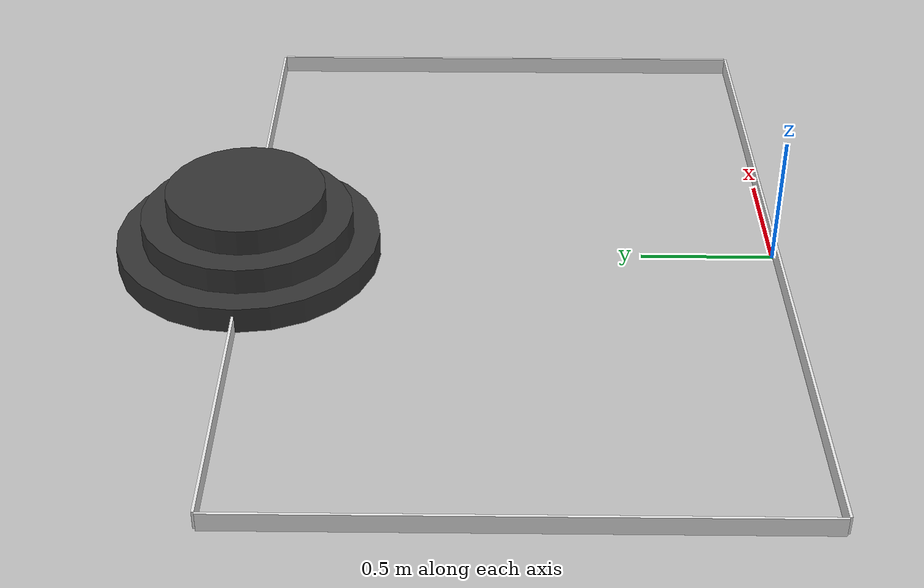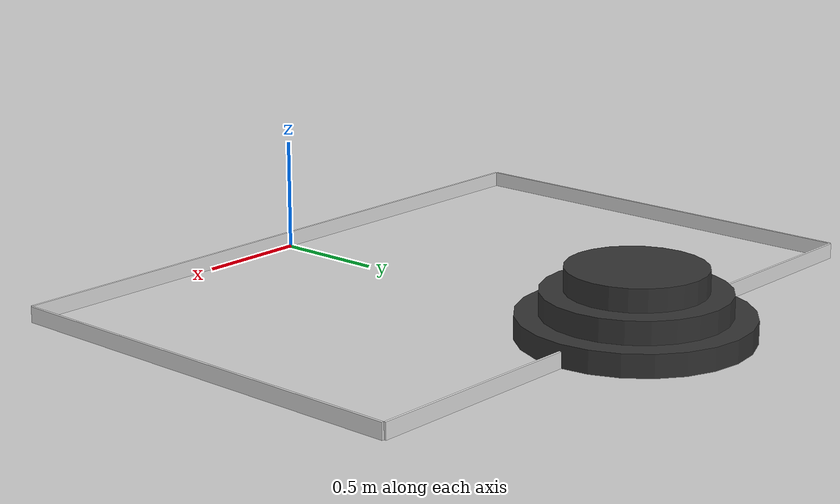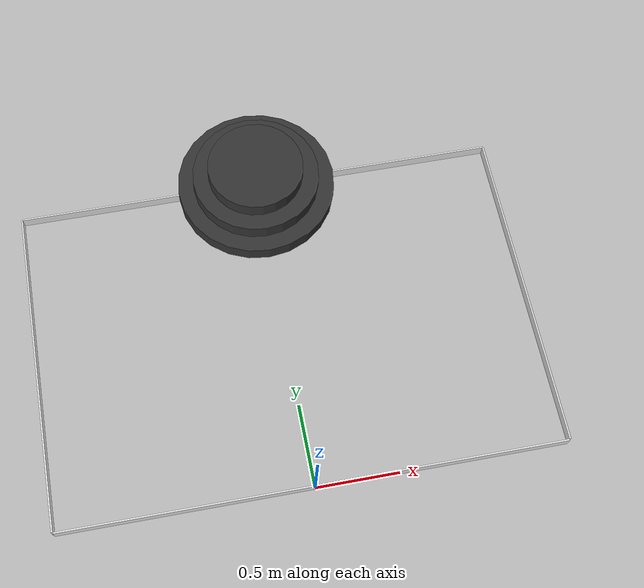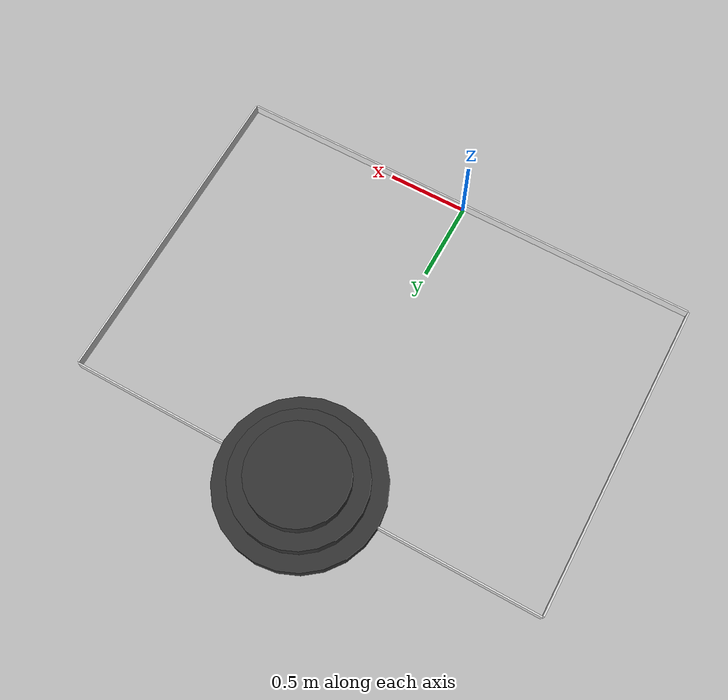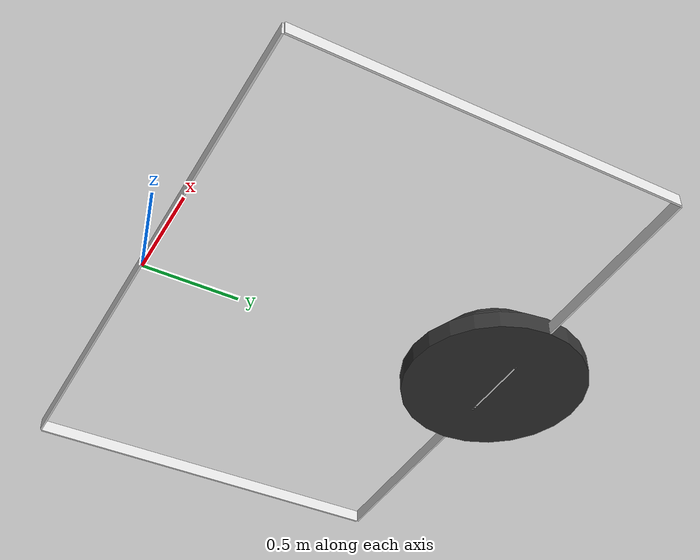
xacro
<?xml version="1.0"?>

<!-- XML namespaces -->
<robot xmlns:sensor="http://playerstage.sourceforge.net/gazebo/xmlschema/#sensor"
       xmlns:controller="http://playerstage.sourceforge.net/gazebo/xmlschema/#controller"
       xmlns:interface="http://playerstage.sourceforge.net/gazebo/xmlschema/#interface"
       xmlns:xacro="http://ros.org/wiki/xacro"
	   name="field2013">

	<xacro:macro name="cyan1">
		<material name="cyan1">
			<color rgba="0 0.9 0.9 1.0"/>
		</material>
	</xacro:macro>

	<xacro:macro name="cyan2">
		<material name="cyan2">
	     <color rgba="0 0.7 0.7 1.0"/>
		</material>
	</xacro:macro>

	<xacro:macro name="cyan3">
		<material name="cyan3">
	     <color rgba="0 0.5 0.5 1.0"/>
		</material>
	</xacro:macro>

	<xacro:macro name="black">
		<material name="black">
			<color rgba="0.1 0.1 0.1 1.0"/>
		</material>
	</xacro:macro>

	<xacro:macro name="black1">
		<material name="black1">
			<color rgba="0.2 0.2 0.2 1.0"/>
		</material>
	</xacro:macro>

	<xacro:macro name="yellow2">
		<material name="yellow2">
			<color rgba="0.8 0.8 0 1.0"/>
		</material>
	</xacro:macro>

	<xacro:macro name="green1">
		<material name="green1">
			<color rgba="0 1 0 1.0"/>
		</material>
	</xacro:macro>

	<xacro:macro name="green2">
		<material name="green2">
			<color rgba="0.1 0.8 0 1.0"/>
		</material>
	</xacro:macro>

	<xacro:macro name="green3">
		<material name="green3">
			<color rgba="0.1 0.5 0.1 1.0"/>
		</material>
	</xacro:macro>

	<xacro:macro name="grey1">
		<material name="grey1">
			<color rgba="0.9 0.9 0.9 1.0"/>
		</material>
	</xacro:macro>

	<xacro:macro name="grey2">
		<material name="grey2">
			<color rgba="0.6 0.6 0.6 1.0"/>
		</material>
	</xacro:macro>

	<xacro:macro name="grey3">
		<material name="grey3">
			<color rgba="0.8 0.8 0.8 1.0"/>
		</material>
	</xacro:macro>

	<xacro:macro name="blue1">
		<material name="blue1">
			<color rgba="0 0 0.9 1.0"/>
		</material>
	</xacro:macro>

	<xacro:macro name="ax12_color">
		<material name="ax12_color">
			<color rgba="0.1 0.1 0.1 1.0"/>
		</material>
	</xacro:macro>

	<xacro:macro name="bracket_color">
		<material name="bracket_color">
			<color rgba="0.9 0.9 0.9 1.0"/>
		</material>
	</xacro:macro>

	<xacro:macro name="ax12" params="name xyz rpy">
		<link name="${name}">
			<visual>
				<origin xyz="${xyz}" rpy="${rpy}" />
				<geometry>
					<box size="0.5 0.32 0.38" />
				</geometry>
				<material name="black1">
					<color rgba="0.2 0.2 0.2 1.0"/>
				</material>
             </visual>
             <collision>
				<origin xyz="${xyz}" rpy="${rpy}" />
					<geometry>
						<box size="0.5 0.32 0.38" />
					</geometry>
             </collision>
             <xacro:default_inertial mass="0.055" />
        </link>
        <xacro:default_gazebo name="${name}" material="Gazebo/FlatBlack" />
	</xacro:macro>

	<xacro:macro name="bracket1" params="name xyz rpy">
		<link name="${name}">
			<visual>
				<origin xyz="${xyz}" rpy="${rpy}" />
				<geometry>
					<box size="0.05 0.025 0.038" />
				</geometry>
				<material name="black1">
					<color rgba="0.2 0.2 0.2 1.0"/>
				</material>
             </visual>
             <collision>
				<origin xyz="${xyz}" rpy="${rpy}" />
					<geometry>
						<box size="0.05 0.025 0.038" />
					</geometry>
             </collision>
             <xacro:default_inertial mass="0.02" />
        </link>
        <xacro:default_gazebo name="${name}" material="Gazebo/WhiteEmissive" />
	</xacro:macro>

	<xacro:macro name="my_box" params="name lwh xyz rpy mass material *rviz_color">
		<link name="${name}">
			<visual>
				<origin xyz="${xyz}" rpy="${rpy}" />
				<geometry>
					<box size="${lwh}" />
				</geometry>
			    <xacro:insert_block name="rviz_color" />
             </visual>
             <collision>
				<origin xyz="${xyz}" rpy="${rpy}" />
					<geometry>
						<box size="${lwh}" />
					</geometry>
             </collision>
             <xacro:default_inertial mass="${mass}" />
        </link>
        <xacro:default_gazebo name="${name}" material="${material}" />
	</xacro:macro>

	<xacro:macro name="my_cylinder" params="name l r xyz rpy mass material *rviz_color">
		<link name="${name}">
			<visual>
				<origin xyz="${xyz}" rpy="${rpy}" />
				<geometry>
					<cylinder length="${l}" radius="${r}" />
				</geometry>
            	<xacro:insert_block name="rviz_color" />
            </visual>
            <collision>
				<origin xyz="${xyz}" rpy="${rpy}" />
					<geometry>
						<cylinder length="${l}" radius="${r}" />
					</geometry>
            </collision>
            <xacro:default_inertial mass="${mass}" />
        </link>
        <xacro:default_gazebo name="${name}" material="${material}" />
	</xacro:macro>

    <xacro:macro name="default_inertial" params="mass">
		<inertial>
			<mass value="${mass}" />
			<inertia ixx="0.001" ixy="0.0" ixz="0.0"
                     iyy="0.001" iyz="0.0"
                     izz="0.001" />
			</inertial>
    </xacro:macro>

    <xacro:macro name="default_gazebo" params="name material">
 		<gazebo reference="${name}">
			<material>${material}</material>
			<selfCollide>false</selfCollide>
			<turnGravityOff>true</turnGravityOff>
		</gazebo>
    </xacro:macro>

        <!-- ============================   Totem   ============================ -->

	<link name="odom" />

    <xacro:my_cylinder name="base_cake" l="0.1" r="0.5" xyz="0 0 0" rpy="0 0 0" mass="0.1" material="Gazebo/Grey">
    <xacro:black1 />
    </xacro:my_cylinder>

    <xacro:my_cylinder name="middle_cake" l="0.1" r="0.4" xyz="0 0 0" rpy="0 0 0" mass="0.1" material="Gazebo/Grey">
    <xacro:black1 />
    </xacro:my_cylinder>

    <xacro:my_cylinder name="top_cake" l="0.1" r="0.3" xyz="0 0 0" rpy="0 0 0" mass="0.1" material="Gazebo/Grey">
    <xacro:black1 />
    </xacro:my_cylinder>

    <!-- ============================   Border   ============================ -->

    <xacro:my_box name="up_link" lwh="3.0 0.01 0.07" xyz="0 0 0" rpy="0 0 0" mass="0.5" material="Gazebo/FlatBlack">
    <xacro:grey1 />
    </xacro:my_box>

    <xacro:my_box name="down_link" lwh="3.0 0.01 0.07" xyz="0 0 0" rpy="0 0 0" mass="0.5" material="Gazebo/FlatBlack">
    <xacro:grey1 />
    </xacro:my_box>

    <xacro:my_box name="left_link" lwh="0.01 2.0 0.07" xyz="0 0 0" rpy="0 0 0" mass="0.5" material="Gazebo/FlatBlack">
    <xacro:grey1 />
    </xacro:my_box>

    <xacro:my_box name="right_link" lwh="0.01 2.0 0.07" xyz="0 0 0" rpy="0 0 0" mass="0.5" material="Gazebo/FlatBlack">
    <xacro:grey1 />
    </xacro:my_box>

    <!-- =================== Joint Definitions ==================== -->

    <joint name="base_cake_joint" type="fixed">
    <parent link="odom" />
    <child link="base_cake" />
    <origin xyz="0.0 2.0 0.05" rpy="0 0 0" />
    </joint>

    <joint name="middle_cake_joint" type="fixed">
    <parent link="base_cake" />
    <child link="middle_cake" />
    <origin xyz="0.0 0.0 0.1" rpy="0 0 0" />
    </joint>

    <joint name="top_cake_joint" type="fixed">
    <parent link="middle_cake" />
    <child link="top_cake" />
    <origin xyz="0.0 0.0 0.1" rpy="0 0 0" />
    </joint>

    <joint name="up_joint" type="fixed">
    <parent link="odom" />
    <child link="up_link" />
    <origin xyz="0.0 -0.005 0.035" rpy="0 0 0" />
    </joint>

    <joint name="down_joint" type="fixed">
    <parent link="odom" />
    <child link="down_link" />
    <origin xyz="0.0 2.005 0.035" rpy="0 0 0" />
    </joint>

    <joint name="left_joint" type="fixed">
    <parent link="odom" />
    <child link="left_link" />
    <origin xyz="-1.505 1.0 0.035" rpy="0 0 0" />
    </joint>

    <joint name="right_joint" type="fixed">
    <parent link="odom" />
    <child link="right_link" />
    <origin xyz="1.505 1.0 0.035" rpy="0 0 0" />
    </joint>

    <gazebo reference="field">
    </gazebo>
    </robot>
